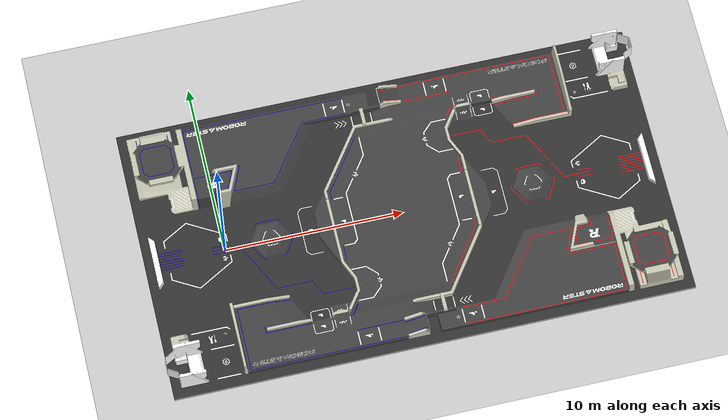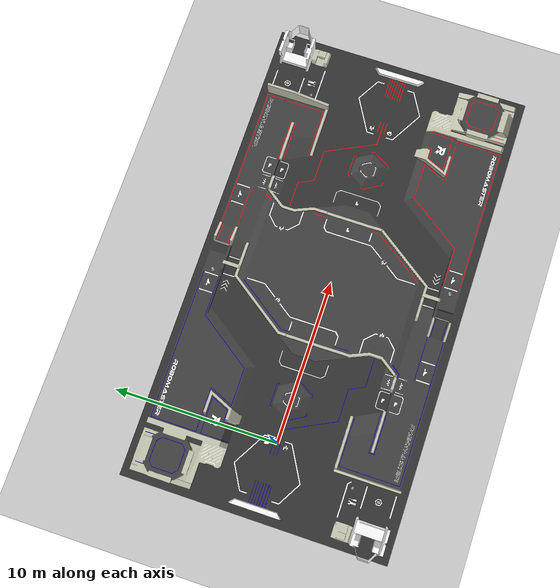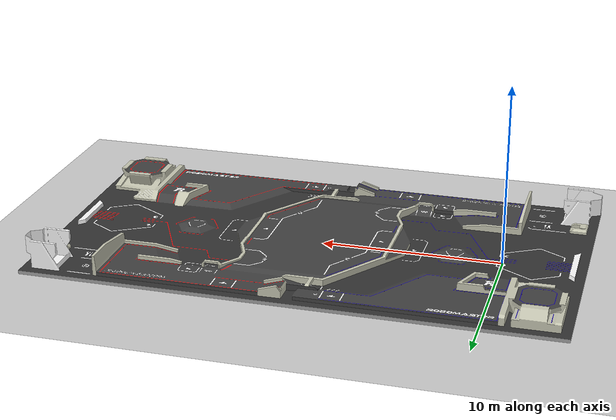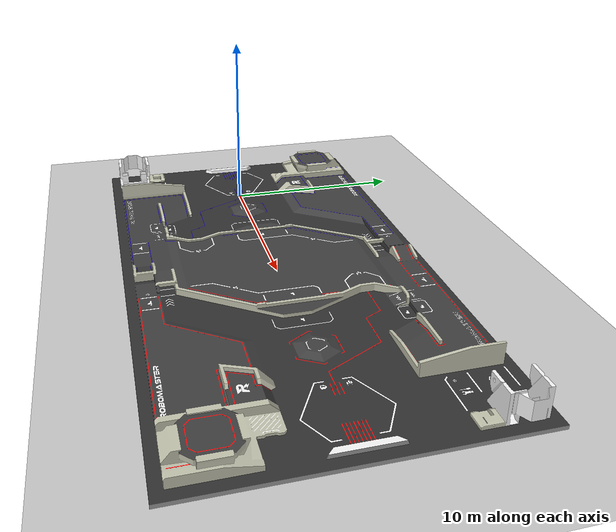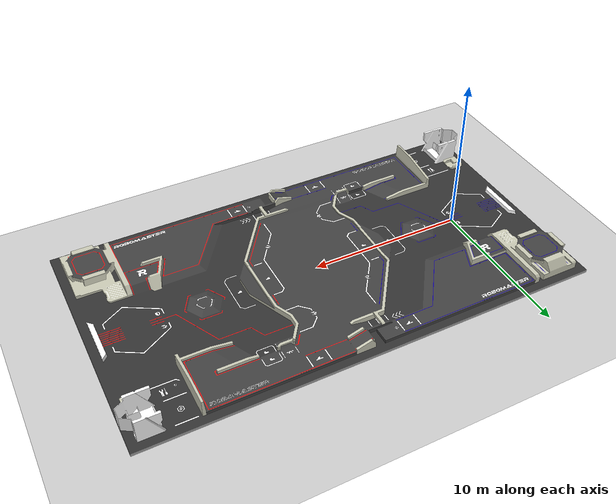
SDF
<sdf version="1.7">
 <world name="default">
  <light name="sun" type="directional">
   <pose>0 0 10 0 -0 0</pose>
   <diffuse>0.8 0.8 0.8 1</diffuse>
   <specular>0.2 0.2 0.2 1</specular>
   <attenuation>
    <range>1000</range>
    <constant>0.9</constant>
    <linear>0.01</linear>
    <quadratic>0.001</quadratic>
   </attenuation>
   <direction>-0.6 0.1 -0.9</direction>
   <spot><inner_angle>0</inner_angle><outer_angle>0</outer_angle><falloff>0</falloff></spot>
  </light>
  <model name="ground_plane">
   <static>1</static>
   <link name="link">
    <collision name="collision">
     <geometry><plane><normal>0 0 1</normal><size>100 100</size></plane></geometry>
     <surface>
      <contact><collide_bitmask>6636</collide_bitmask></contact>
      <friction><ode><mu>100</mu><mu2>60</mu2></ode></friction>
     </surface>
    </collision>
    <visual name="visual">
     <cast_shadows>0</cast_shadows>
     <geometry><plane><normal>0 0 1</normal><size>100 100</size></plane></geometry>
     <material>
      <script><uri>file://media/materials/scripts/gazebo.material</uri><name>Gazebo/Grey</name></script>
     </material>
    </visual>
   </link>
  </model>
  <gravity>0 0 -9.8</gravity>
  <magnetic_field>6e-06 2.3e-06 -4.2e-06</magnetic_field>
  <atmosphere type="adiabatic"/>
  <physics type="ode">
   <max_step_size>0.001</max_step_size>
   <real_time_factor>1</real_time_factor>
   <real_time_update_rate>1000</real_time_update_rate>
  </physics>
  <scene><ambient>0.4 0.4 0.4 1</ambient><background>0.7 0.7 0.7 1</background><shadows>1</shadows></scene>
  <spherical_coordinates>
   <surface_model>EARTH_WGS84</surface_model>
   <latitude_deg>0</latitude_deg>
   <longitude_deg>0</longitude_deg>
   <elevation>0</elevation>
   <heading_deg>0</heading_deg>
  </spherical_coordinates>
  <model name="rmuc_2025">
   <static>true</static>
   <link name="body">
    <pose>-4.5 -8.05 0 0 0 0</pose>
    <visual name="visual">
     <geometry><mesh><uri>../meshes/RMUC2026.dae</uri><scale>1 1 1</scale></mesh></geometry>
    </visual>
    <collision name="collision">
     <geometry><mesh><uri>../meshes/rmuc2026.STL</uri><scale>1 1 1</scale></mesh></geometry>
    </collision>
   </link>
  </model>
 </world>
</sdf>
